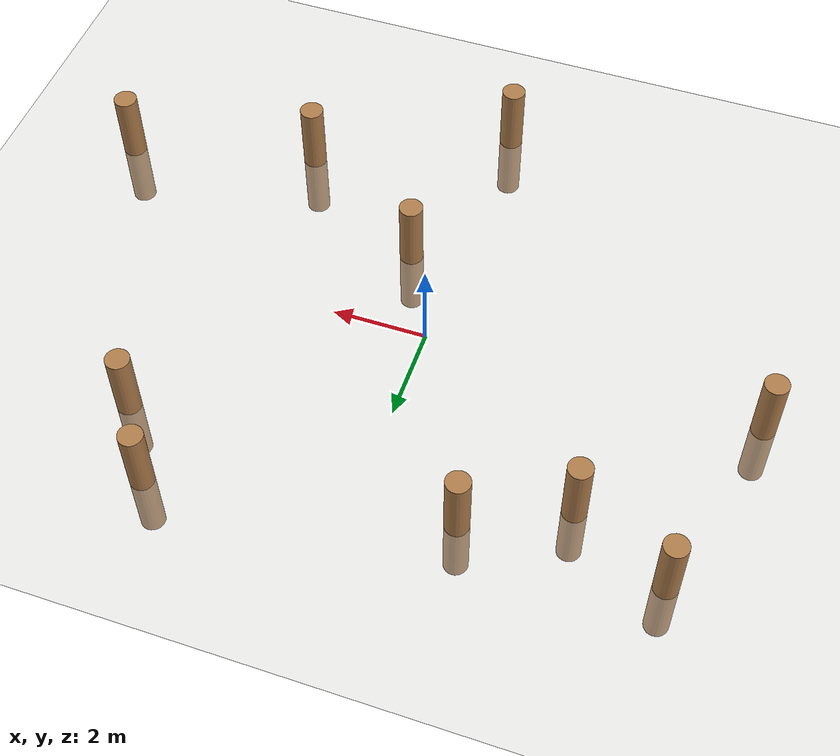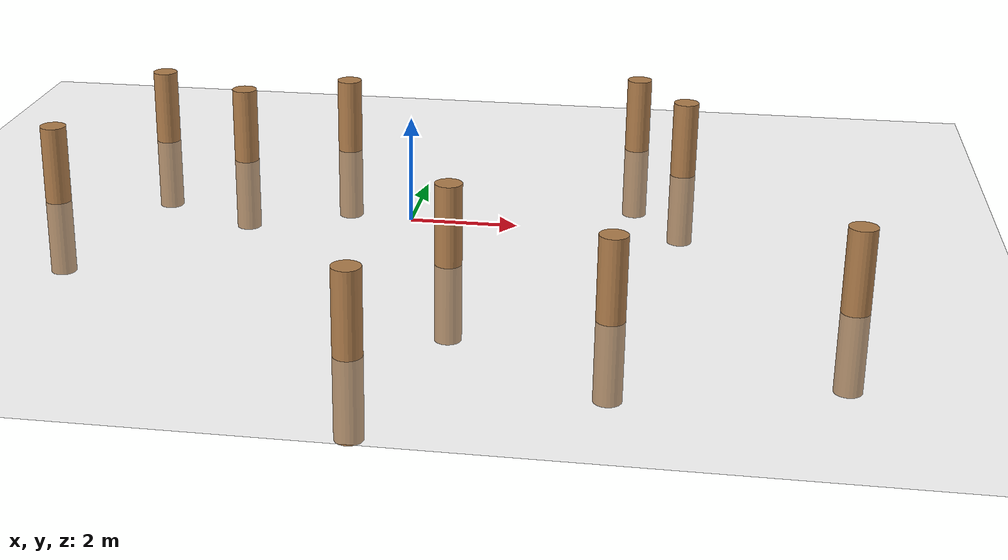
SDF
<sdf version="1.5">
 <world name="default">
  <include><uri>model://sun</uri></include>
  <include><uri>model://ground_plane</uri></include>
  <physics type="ode">
   <max_step_size>0.01</max_step_size>
   <real_time_factor>1</real_time_factor>
   <real_time_update_rate>100</real_time_update_rate>
   <gravity>0 0 -9.8</gravity>
  </physics>
  <model name="cylinder1">
   <static>true</static>
   <link name="link">
    <collision name="cylinder1">
     <pose>-2 4 0 0 0 0</pose>
     <geometry><cylinder><radius>0.25</radius><length>3</length></cylinder></geometry>
    </collision>
    <visual name="vis_cyl1">
     <pose>-2 4 0 0 0 0</pose>
     <geometry><cylinder><radius>0.25</radius><length>3</length></cylinder></geometry>
     <material>
      <script><uri>file://media/materials/scripts/gazebo.material</uri><name>Gazebo/Wood</name></script>
     </material>
    </visual>
   </link>
  </model>
  <model name="cylinder2">
   <static>true</static>
   <link name="link">
    <collision name="coll_cyl2">
     <pose>8 -3 0 0 0 0</pose>
     <geometry><cylinder><radius>0.25</radius><length>3</length></cylinder></geometry>
    </collision>
    <visual name="vis_cyl2">
     <pose>8 -3 0 0 0 0</pose>
     <geometry><cylinder><radius>0.25</radius><length>3</length></cylinder></geometry>
     <material>
      <script><uri>file://media/materials/scripts/gazebo.material</uri><name>Gazebo/Wood</name></script>
     </material>
    </visual>
   </link>
  </model>
  <model name="cylinder3">
   <static>true</static>
   <link name="link">
    <collision name="coll_cyl3">
     <pose>-7 0 0 0 0 0</pose>
     <geometry><cylinder><radius>0.25</radius><length>3</length></cylinder></geometry>
    </collision>
    <visual name="vis_cyl3">
     <pose>-7 0 0 0 0 0</pose>
     <geometry><cylinder><radius>0.25</radius><length>3</length></cylinder></geometry>
     <material>
      <script><uri>file://media/materials/scripts/gazebo.material</uri><name>Gazebo/Wood</name></script>
     </material>
    </visual>
   </link>
  </model>
  <model name="cylinder4">
   <static>true</static>
   <link name="link">
    <collision name="coll_cyl4">
     <pose>0 -6 0 0 0 0</pose>
     <geometry><cylinder><radius>0.25</radius><length>3</length></cylinder></geometry>
    </collision>
    <visual name="vis_cyl4">
     <pose>0 -6 0 0 0 0</pose>
     <geometry><cylinder><radius>0.25</radius><length>3</length></cylinder></geometry>
     <material>
      <script><uri>file://media/materials/scripts/gazebo.material</uri><name>Gazebo/Wood</name></script>
     </material>
    </visual>
   </link>
  </model>
  <model name="cylinder5">
   <static>true</static>
   <link name="link">
    <collision name="coll_cyl5">
     <pose>5 3.5 0 0 0 0</pose>
     <geometry><cylinder><radius>0.25</radius><length>3</length></cylinder></geometry>
    </collision>
    <visual name="vis_cyl5">
     <pose>5 3.5 0 0 0 0</pose>
     <geometry><cylinder><radius>0.25</radius><length>3</length></cylinder></geometry>
     <material>
      <script><uri>file://media/materials/scripts/gazebo.material</uri><name>Gazebo/Wood</name></script>
     </material>
    </visual>
   </link>
  </model>
  <model name="cylinder6">
   <static>true</static>
   <link name="link">
    <collision name="coll_cyl6">
     <pose>4 5 0 0 0 0</pose>
     <geometry><cylinder><radius>0.25</radius><length>3</length></cylinder></geometry>
    </collision>
    <visual name="vis_cyl6">
     <pose>4 5 0 0 0 0</pose>
     <geometry><cylinder><radius>0.25</radius><length>3</length></cylinder></geometry>
     <material>
      <script><uri>file://media/materials/scripts/gazebo.material</uri><name>Gazebo/Wood</name></script>
     </material>
    </visual>
   </link>
  </model>
  <model name="cylinder7">
   <static>true</static>
   <link name="link">
    <collision name="coll_cyl7">
     <pose>-4 3 0 0 0 0</pose>
     <geometry><cylinder><radius>0.25</radius><length>3</length></cylinder></geometry>
    </collision>
    <visual name="vis_cyl7">
     <pose>-4 3 0 0 0 0</pose>
     <geometry><cylinder><radius>0.25</radius><length>3</length></cylinder></geometry>
     <material>
      <script><uri>file://media/materials/scripts/gazebo.material</uri><name>Gazebo/Wood</name></script>
     </material>
    </visual>
   </link>
  </model>
  <model name="cylinder8">
   <static>true</static>
   <link name="link">
    <collision name="coll_cyl8">
     <pose>1 -2 0 0 0 0</pose>
     <geometry><cylinder><radius>0.25</radius><length>3</length></cylinder></geometry>
    </collision>
    <visual name="vis_cyl8">
     <pose>1 -2 0 0 0 0</pose>
     <geometry><cylinder><radius>0.25</radius><length>3</length></cylinder></geometry>
     <material>
      <script><uri>file://media/materials/scripts/gazebo.material</uri><name>Gazebo/Wood</name></script>
     </material>
    </visual>
   </link>
  </model>
  <model name="cylinder9">
   <static>true</static>
   <link name="link">
    <collision name="coll_cyl9">
     <pose>-6 4 0 0 0 0</pose>
     <geometry><cylinder><radius>0.25</radius><length>3</length></cylinder></geometry>
    </collision>
    <visual name="vis_cyl9">
     <pose>-6 4 0 0 0 0</pose>
     <geometry><cylinder><radius>0.25</radius><length>3</length></cylinder></geometry>
     <material>
      <script><uri>file://media/materials/scripts/gazebo.material</uri><name>Gazebo/Wood</name></script>
     </material>
    </visual>
   </link>
  </model>
  <model name="cylinder10">
   <static>true</static>
   <link name="link">
    <collision name="coll_cyl10">
     <pose>4 -4 0 0 0 0</pose>
     <geometry><cylinder><radius>0.25</radius><length>3</length></cylinder></geometry>
    </collision>
    <visual name="vis_cyl10">
     <pose>4 -4 0 0 0 0</pose>
     <geometry><cylinder><radius>0.25</radius><length>3</length></cylinder></geometry>
     <material>
      <script><uri>file://media/materials/scripts/gazebo.material</uri><name>Gazebo/Wood</name></script>
     </material>
    </visual>
   </link>
  </model>
 </world>
</sdf>
